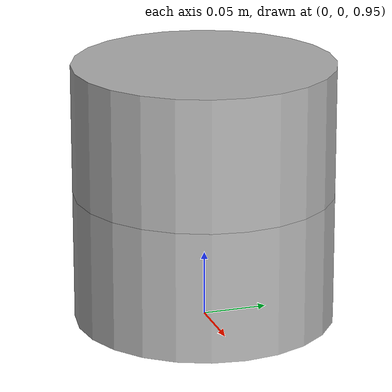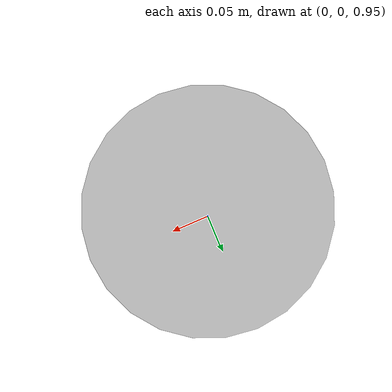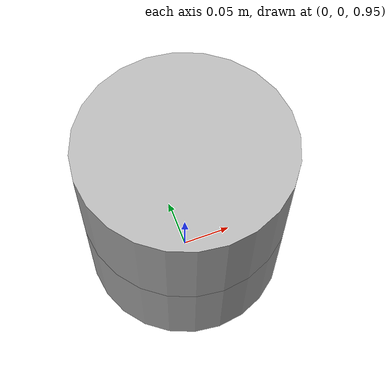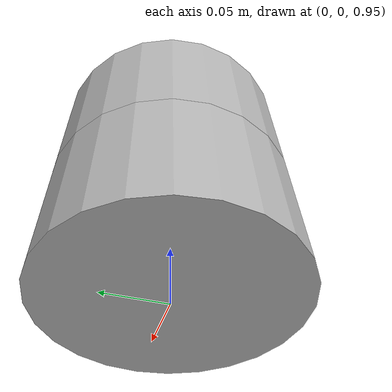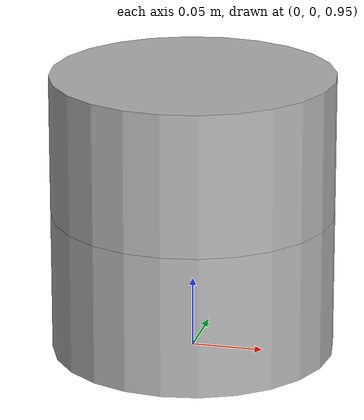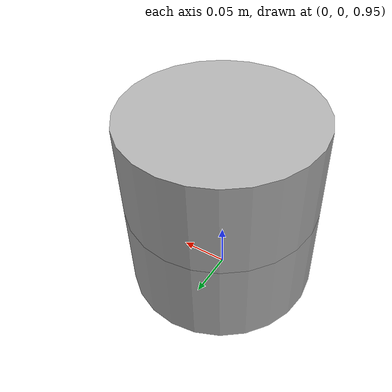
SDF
<?xml version="1.0" encoding="UTF-8"?>
<sdf version='1.9'>
  <model name='iris_3d_lidar'>
    <include merge='true'>
      <uri>iris/model.sdf</uri>
      <pose>0 0 1 0 0 0</pose>
    </include>

    <include>
      <uri>model://rgl</uri>
      <pose>0.0 0 1.1 0 0 0</pose>
    </include>
    <joint name="LidarJoint" type="revolute">
      <child>RGLLidar::lidar_link</child>
      <parent>base_link</parent>
      <axis>
        <xyz>0 0 1</xyz>
        <limit>
          <upper>0</upper>
          <lower>0</lower>
        </limit>
      </axis>
    </joint>

  </model>
</sdf>

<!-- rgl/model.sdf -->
<sdf version='1.9'>
  <model name='RGLLidar'>
    <pose>0 0 0 0 -0 0</pose>
    <link name='lidar_link'>
      <!-- Custom sensor with RGL plugin that simulates lidar -->
      <sensor name="RGLsensor" type="custom">
        <plugin filename="RGLServerPluginInstance" name="rgl::RGLServerPluginInstance">
          <range>100</range>
          <update_rate>10</update_rate>
          <update_on_paused_sim>false</update_on_paused_sim>
          <topic>rgl_lidar</topic>
          <frame>RGLLidar</frame>
          <pattern_preset>Alpha Prime</pattern_preset>
        </plugin>
      </sensor>
      <inertial>
        <inertia>
          <ixx>0.00014580000000000001</ixx>
          <ixy>0</ixy>
          <ixz>0</ixz>
          <iyy>0.00014580000000000001</iyy>
          <iyz>0</iyz>
          <izz>0.000125</izz>
        </inertia>
        <mass>0.001</mass>
        <pose>0 0 0 0 -0 0</pose>
      </inertial>
      <collision name='lidar_collision'>
        <geometry>
          <cylinder>
            <radius>0.1</radius>
            <length>0.1</length>
          </cylinder>
        </geometry>
        <surface>
          <friction>
            <ode/>
          </friction>
          <bounce/>
          <contact/>
        </surface>
      </collision>
      <visual name='lidar_visual'>
        <geometry>
          <cylinder>
            <radius>0.1</radius>
            <length>0.1</length>
          </cylinder>
        </geometry>
        <material>
          <ambient>0.3 0.3 0.3 1</ambient>
          <diffuse>0.7 0.7 0.7 1</diffuse>
          <specular>1 1 1 1</specular>
        </material>
      </visual>
      <pose>0 0 0 0 -0 0</pose>
      <enable_wind>false</enable_wind>
    </link>
    <static>true</static>
    <self_collide>false</self_collide>
  </model>
</sdf>
